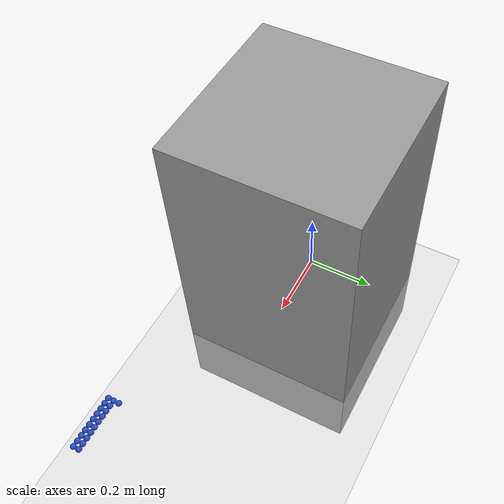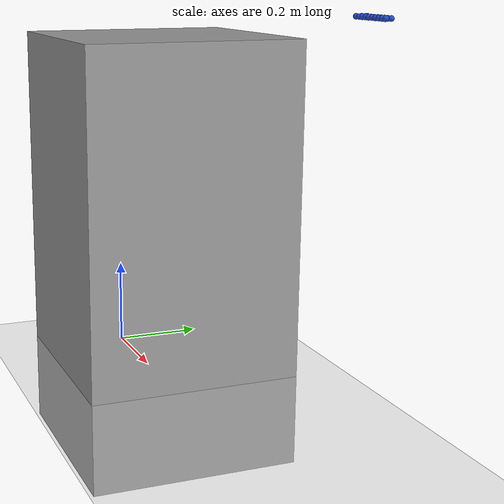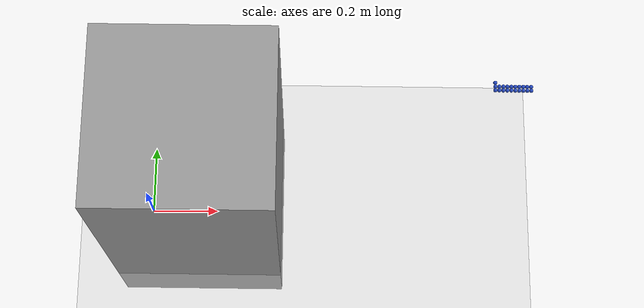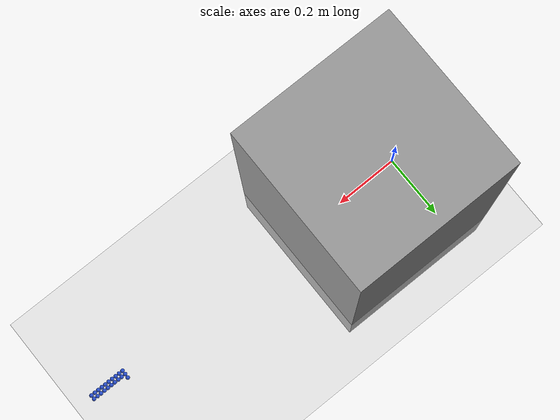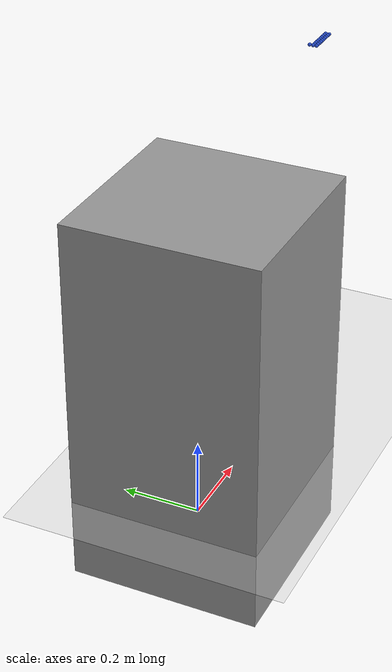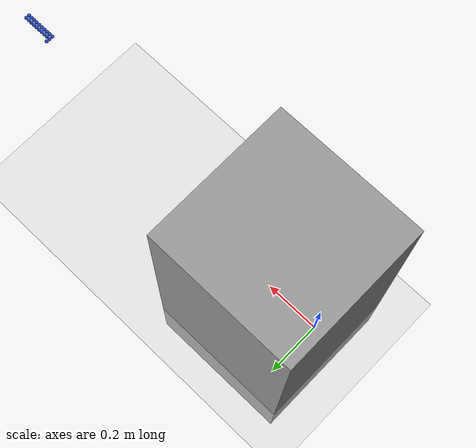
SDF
<sdf version="1.4">
 <world name="default">
  <include><uri>model://ground_plane</uri></include>
  <include><uri>model://sun</uri></include>
  <model name="unit_box_1">
   <pose>0.15 0.05 0.28 0 -0 0</pose>
   <link name="link">
    <inertial>
     <mass>1</mass>
     <inertia><ixx>1</ixx><ixy>0</ixy><ixz>0</ixz><iyy>1</iyy><iyz>0</iyz><izz>1</izz></inertia>
    </inertial>
    <collision name="collision"><geometry><box><size>0.5 0.5 0.55</size></box></geometry></collision>
    <visual name="visual">
     <geometry><box><size>0.5 0.5 1.0</size></box></geometry>
     <material>
      <script><uri>file://media/materials/scripts/gazebo.material</uri><name>Gazebo/Gray</name></script>
     </material>
    </visual>
    <velocity_decay><linear>0</linear><angular>0</angular></velocity_decay>
   </link>
   <static>1</static>
  </model>
  <model name="ball_bearing_0">
   <link name="link">
    <pose>0 0 0.003 0 0 0</pose>
    <inertial>
     <mass>0.0011</mass>
     <inertia>
      <ixx>3.96e-09</ixx>
      <ixy>0</ixy>
      <ixz>0</ixz>
      <iyy>3.96e-09</iyy>
      <iyz>0</iyz>
      <izz>3.96e-09</izz>
     </inertia>
    </inertial>
    <collision name="collision">
     <geometry><sphere><radius>0.005</radius></sphere></geometry>
     <surface><contact><ode><max_vel>0.1</max_vel><min_depth>0.0001</min_depth></ode></contact></surface>
    </collision>
    <visual name="visual">
     <geometry><sphere><radius>0.005</radius></sphere></geometry>
     <material>
      <script><uri>file://media/materials/scripts/gazebo.material</uri><name>Gazebo/Blue</name></script>
     </material>
    </visual>
    <velocity_decay><linear>0</linear><angular>0.005</angular></velocity_decay>
   </link>
   <pose>0.95 0.1 0.85 0.0 0.0 0.0</pose>
  </model>
  <model name="ball_bearing_1">
   <link name="link">
    <pose>0 0 0.003 0 0 0</pose>
    <inertial>
     <mass>0.0011</mass>
     <inertia>
      <ixx>3.96e-09</ixx>
      <ixy>0</ixy>
      <ixz>0</ixz>
      <iyy>3.96e-09</iyy>
      <iyz>0</iyz>
      <izz>3.96e-09</izz>
     </inertia>
    </inertial>
    <collision name="collision">
     <geometry><sphere><radius>0.005</radius></sphere></geometry>
     <surface><contact><ode><max_vel>0.1</max_vel><min_depth>0.0001</min_depth></ode></contact></surface>
    </collision>
    <visual name="visual">
     <geometry><sphere><radius>0.005</radius></sphere></geometry>
     <material>
      <script><uri>file://media/materials/scripts/gazebo.material</uri><name>Gazebo/Blue</name></script>
     </material>
    </visual>
    <velocity_decay><linear>0</linear><angular>0.005</angular></velocity_decay>
   </link>
   <pose>0.96 0.1 0.85 0.0 0.0 0.0</pose>
  </model>
  <model name="ball_bearing_2">
   <link name="link">
    <pose>0 0 0.003 0 0 0</pose>
    <inertial>
     <mass>0.0011</mass>
     <inertia>
      <ixx>3.96e-09</ixx>
      <ixy>0</ixy>
      <ixz>0</ixz>
      <iyy>3.96e-09</iyy>
      <iyz>0</iyz>
      <izz>3.96e-09</izz>
     </inertia>
    </inertial>
    <collision name="collision">
     <geometry><sphere><radius>0.005</radius></sphere></geometry>
     <surface><contact><ode><max_vel>0.1</max_vel><min_depth>0.0001</min_depth></ode></contact></surface>
    </collision>
    <visual name="visual">
     <geometry><sphere><radius>0.005</radius></sphere></geometry>
     <material>
      <script><uri>file://media/materials/scripts/gazebo.material</uri><name>Gazebo/Blue</name></script>
     </material>
    </visual>
    <velocity_decay><linear>0</linear><angular>0.005</angular></velocity_decay>
   </link>
   <pose>0.97 0.1 0.85 0.0 0.0 0.0</pose>
  </model>
  <model name="ball_bearing_3">
   <link name="link">
    <pose>0 0 0.003 0 0 0</pose>
    <inertial>
     <mass>0.0011</mass>
     <inertia>
      <ixx>3.96e-09</ixx>
      <ixy>0</ixy>
      <ixz>0</ixz>
      <iyy>3.96e-09</iyy>
      <iyz>0</iyz>
      <izz>3.96e-09</izz>
     </inertia>
    </inertial>
    <collision name="collision">
     <geometry><sphere><radius>0.005</radius></sphere></geometry>
     <surface><contact><ode><max_vel>0.1</max_vel><min_depth>0.0001</min_depth></ode></contact></surface>
    </collision>
    <visual name="visual">
     <geometry><sphere><radius>0.005</radius></sphere></geometry>
     <material>
      <script><uri>file://media/materials/scripts/gazebo.material</uri><name>Gazebo/Blue</name></script>
     </material>
    </visual>
    <velocity_decay><linear>0</linear><angular>0.005</angular></velocity_decay>
   </link>
   <pose>0.98 0.1 0.85 0.0 0.0 0.0</pose>
  </model>
  <model name="ball_bearing_4">
   <link name="link">
    <pose>0 0 0.003 0 0 0</pose>
    <inertial>
     <mass>0.0011</mass>
     <inertia>
      <ixx>3.96e-09</ixx>
      <ixy>0</ixy>
      <ixz>0</ixz>
      <iyy>3.96e-09</iyy>
      <iyz>0</iyz>
      <izz>3.96e-09</izz>
     </inertia>
    </inertial>
    <collision name="collision">
     <geometry><sphere><radius>0.005</radius></sphere></geometry>
     <surface><contact><ode><max_vel>0.1</max_vel><min_depth>0.0001</min_depth></ode></contact></surface>
    </collision>
    <visual name="visual">
     <geometry><sphere><radius>0.005</radius></sphere></geometry>
     <material>
      <script><uri>file://media/materials/scripts/gazebo.material</uri><name>Gazebo/Blue</name></script>
     </material>
    </visual>
    <velocity_decay><linear>0</linear><angular>0.005</angular></velocity_decay>
   </link>
   <pose>0.99 0.1 0.85 0.0 0.0 0.0</pose>
  </model>
  <model name="ball_bearing_5">
   <link name="link">
    <pose>0 0 0.003 0 0 0</pose>
    <inertial>
     <mass>0.0011</mass>
     <inertia>
      <ixx>3.96e-09</ixx>
      <ixy>0</ixy>
      <ixz>0</ixz>
      <iyy>3.96e-09</iyy>
      <iyz>0</iyz>
      <izz>3.96e-09</izz>
     </inertia>
    </inertial>
    <collision name="collision">
     <geometry><sphere><radius>0.005</radius></sphere></geometry>
     <surface><contact><ode><max_vel>0.1</max_vel><min_depth>0.0001</min_depth></ode></contact></surface>
    </collision>
    <visual name="visual">
     <geometry><sphere><radius>0.005</radius></sphere></geometry>
     <material>
      <script><uri>file://media/materials/scripts/gazebo.material</uri><name>Gazebo/Blue</name></script>
     </material>
    </visual>
    <velocity_decay><linear>0</linear><angular>0.005</angular></velocity_decay>
   </link>
   <pose>1.0 0.1 0.85 0.0 0.0 0.0</pose>
  </model>
  <model name="ball_bearing_6">
   <link name="link">
    <pose>0 0 0.003 0 0 0</pose>
    <inertial>
     <mass>0.0011</mass>
     <inertia>
      <ixx>3.96e-09</ixx>
      <ixy>0</ixy>
      <ixz>0</ixz>
      <iyy>3.96e-09</iyy>
      <iyz>0</iyz>
      <izz>3.96e-09</izz>
     </inertia>
    </inertial>
    <collision name="collision">
     <geometry><sphere><radius>0.005</radius></sphere></geometry>
     <surface><contact><ode><max_vel>0.1</max_vel><min_depth>0.0001</min_depth></ode></contact></surface>
    </collision>
    <visual name="visual">
     <geometry><sphere><radius>0.005</radius></sphere></geometry>
     <material>
      <script><uri>file://media/materials/scripts/gazebo.material</uri><name>Gazebo/Blue</name></script>
     </material>
    </visual>
    <velocity_decay><linear>0</linear><angular>0.005</angular></velocity_decay>
   </link>
   <pose>1.01 0.1 0.85 0.0 0.0 0.0</pose>
  </model>
  <model name="ball_bearing_7">
   <link name="link">
    <pose>0 0 0.003 0 0 0</pose>
    <inertial>
     <mass>0.0011</mass>
     <inertia>
      <ixx>3.96e-09</ixx>
      <ixy>0</ixy>
      <ixz>0</ixz>
      <iyy>3.96e-09</iyy>
      <iyz>0</iyz>
      <izz>3.96e-09</izz>
     </inertia>
    </inertial>
    <collision name="collision">
     <geometry><sphere><radius>0.005</radius></sphere></geometry>
     <surface><contact><ode><max_vel>0.1</max_vel><min_depth>0.0001</min_depth></ode></contact></surface>
    </collision>
    <visual name="visual">
     <geometry><sphere><radius>0.005</radius></sphere></geometry>
     <material>
      <script><uri>file://media/materials/scripts/gazebo.material</uri><name>Gazebo/Blue</name></script>
     </material>
    </visual>
    <velocity_decay><linear>0</linear><angular>0.005</angular></velocity_decay>
   </link>
   <pose>1.02 0.1 0.85 0.0 0.0 0.0</pose>
  </model>
  <model name="ball_bearing_8">
   <link name="link">
    <pose>0 0 0.003 0 0 0</pose>
    <inertial>
     <mass>0.0011</mass>
     <inertia>
      <ixx>3.96e-09</ixx>
      <ixy>0</ixy>
      <ixz>0</ixz>
      <iyy>3.96e-09</iyy>
      <iyz>0</iyz>
      <izz>3.96e-09</izz>
     </inertia>
    </inertial>
    <collision name="collision">
     <geometry><sphere><radius>0.005</radius></sphere></geometry>
     <surface><contact><ode><max_vel>0.1</max_vel><min_depth>0.0001</min_depth></ode></contact></surface>
    </collision>
    <visual name="visual">
     <geometry><sphere><radius>0.005</radius></sphere></geometry>
     <material>
      <script><uri>file://media/materials/scripts/gazebo.material</uri><name>Gazebo/Blue</name></script>
     </material>
    </visual>
    <velocity_decay><linear>0</linear><angular>0.005</angular></velocity_decay>
   </link>
   <pose>1.03 0.1 0.85 0.0 0.0 0.0</pose>
  </model>
  <model name="ball_bearing_9">
   <link name="link">
    <pose>0 0 0.003 0 0 0</pose>
    <inertial>
     <mass>0.0011</mass>
     <inertia>
      <ixx>3.96e-09</ixx>
      <ixy>0</ixy>
      <ixz>0</ixz>
      <iyy>3.96e-09</iyy>
      <iyz>0</iyz>
      <izz>3.96e-09</izz>
     </inertia>
    </inertial>
    <collision name="collision">
     <geometry><sphere><radius>0.005</radius></sphere></geometry>
     <surface><contact><ode><max_vel>0.1</max_vel><min_depth>0.0001</min_depth></ode></contact></surface>
    </collision>
    <visual name="visual">
     <geometry><sphere><radius>0.005</radius></sphere></geometry>
     <material>
      <script><uri>file://media/materials/scripts/gazebo.material</uri><name>Gazebo/Blue</name></script>
     </material>
    </visual>
    <velocity_decay><linear>0</linear><angular>0.005</angular></velocity_decay>
   </link>
   <pose>1.04 0.1 0.85 0.0 0.0 0.0</pose>
  </model>
  <model name="ball_bearing_10">
   <link name="link">
    <pose>0 0 0.003 0 0 0</pose>
    <inertial>
     <mass>0.0011</mass>
     <inertia>
      <ixx>3.96e-09</ixx>
      <ixy>0</ixy>
      <ixz>0</ixz>
      <iyy>3.96e-09</iyy>
      <iyz>0</iyz>
      <izz>3.96e-09</izz>
     </inertia>
    </inertial>
    <collision name="collision">
     <geometry><sphere><radius>0.005</radius></sphere></geometry>
     <surface><contact><ode><max_vel>0.1</max_vel><min_depth>0.0001</min_depth></ode></contact></surface>
    </collision>
    <visual name="visual">
     <geometry><sphere><radius>0.005</radius></sphere></geometry>
     <material>
      <script><uri>file://media/materials/scripts/gazebo.material</uri><name>Gazebo/Blue</name></script>
     </material>
    </visual>
    <velocity_decay><linear>0</linear><angular>0.005</angular></velocity_decay>
   </link>
   <pose>0.95 0.11 0.85 0.0 0.0 0.0</pose>
  </model>
  <model name="ball_bearing_11">
   <link name="link">
    <pose>0 0 0.003 0 0 0</pose>
    <inertial>
     <mass>0.0011</mass>
     <inertia>
      <ixx>3.96e-09</ixx>
      <ixy>0</ixy>
      <ixz>0</ixz>
      <iyy>3.96e-09</iyy>
      <iyz>0</iyz>
      <izz>3.96e-09</izz>
     </inertia>
    </inertial>
    <collision name="collision">
     <geometry><sphere><radius>0.005</radius></sphere></geometry>
     <surface><contact><ode><max_vel>0.1</max_vel><min_depth>0.0001</min_depth></ode></contact></surface>
    </collision>
    <visual name="visual">
     <geometry><sphere><radius>0.005</radius></sphere></geometry>
     <material>
      <script><uri>file://media/materials/scripts/gazebo.material</uri><name>Gazebo/Blue</name></script>
     </material>
    </visual>
    <velocity_decay><linear>0</linear><angular>0.005</angular></velocity_decay>
   </link>
   <pose>0.96 0.11 0.85 0.0 0.0 0.0</pose>
  </model>
  <model name="ball_bearing_12">
   <link name="link">
    <pose>0 0 0.003 0 0 0</pose>
    <inertial>
     <mass>0.0011</mass>
     <inertia>
      <ixx>3.96e-09</ixx>
      <ixy>0</ixy>
      <ixz>0</ixz>
      <iyy>3.96e-09</iyy>
      <iyz>0</iyz>
      <izz>3.96e-09</izz>
     </inertia>
    </inertial>
    <collision name="collision">
     <geometry><sphere><radius>0.005</radius></sphere></geometry>
     <surface><contact><ode><max_vel>0.1</max_vel><min_depth>0.0001</min_depth></ode></contact></surface>
    </collision>
    <visual name="visual">
     <geometry><sphere><radius>0.005</radius></sphere></geometry>
     <material>
      <script><uri>file://media/materials/scripts/gazebo.material</uri><name>Gazebo/Blue</name></script>
     </material>
    </visual>
    <velocity_decay><linear>0</linear><angular>0.005</angular></velocity_decay>
   </link>
   <pose>0.97 0.11 0.85 0.0 0.0 0.0</pose>
  </model>
  <model name="ball_bearing_13">
   <link name="link">
    <pose>0 0 0.003 0 0 0</pose>
    <inertial>
     <mass>0.0011</mass>
     <inertia>
      <ixx>3.96e-09</ixx>
      <ixy>0</ixy>
      <ixz>0</ixz>
      <iyy>3.96e-09</iyy>
      <iyz>0</iyz>
      <izz>3.96e-09</izz>
     </inertia>
    </inertial>
    <collision name="collision">
     <geometry><sphere><radius>0.005</radius></sphere></geometry>
     <surface><contact><ode><max_vel>0.1</max_vel><min_depth>0.0001</min_depth></ode></contact></surface>
    </collision>
    <visual name="visual">
     <geometry><sphere><radius>0.005</radius></sphere></geometry>
     <material>
      <script><uri>file://media/materials/scripts/gazebo.material</uri><name>Gazebo/Blue</name></script>
     </material>
    </visual>
    <velocity_decay><linear>0</linear><angular>0.005</angular></velocity_decay>
   </link>
   <pose>0.98 0.11 0.85 0.0 0.0 0.0</pose>
  </model>
  <model name="ball_bearing_14">
   <link name="link">
    <pose>0 0 0.003 0 0 0</pose>
    <inertial>
     <mass>0.0011</mass>
     <inertia>
      <ixx>3.96e-09</ixx>
      <ixy>0</ixy>
      <ixz>0</ixz>
      <iyy>3.96e-09</iyy>
      <iyz>0</iyz>
      <izz>3.96e-09</izz>
     </inertia>
    </inertial>
    <collision name="collision">
     <geometry><sphere><radius>0.005</radius></sphere></geometry>
     <surface><contact><ode><max_vel>0.1</max_vel><min_depth>0.0001</min_depth></ode></contact></surface>
    </collision>
    <visual name="visual">
     <geometry><sphere><radius>0.005</radius></sphere></geometry>
     <material>
      <script><uri>file://media/materials/scripts/gazebo.material</uri><name>Gazebo/Blue</name></script>
     </material>
    </visual>
    <velocity_decay><linear>0</linear><angular>0.005</angular></velocity_decay>
   </link>
   <pose>0.99 0.11 0.85 0.0 0.0 0.0</pose>
  </model>
  <model name="ball_bearing_15">
   <link name="link">
    <pose>0 0 0.003 0 0 0</pose>
    <inertial>
     <mass>0.0011</mass>
     <inertia>
      <ixx>3.96e-09</ixx>
      <ixy>0</ixy>
      <ixz>0</ixz>
      <iyy>3.96e-09</iyy>
      <iyz>0</iyz>
      <izz>3.96e-09</izz>
     </inertia>
    </inertial>
    <collision name="collision">
     <geometry><sphere><radius>0.005</radius></sphere></geometry>
     <surface><contact><ode><max_vel>0.1</max_vel><min_depth>0.0001</min_depth></ode></contact></surface>
    </collision>
    <visual name="visual">
     <geometry><sphere><radius>0.005</radius></sphere></geometry>
     <material>
      <script><uri>file://media/materials/scripts/gazebo.material</uri><name>Gazebo/Blue</name></script>
     </material>
    </visual>
    <velocity_decay><linear>0</linear><angular>0.005</angular></velocity_decay>
   </link>
   <pose>1.0 0.11 0.85 0.0 0.0 0.0</pose>
  </model>
  <model name="ball_bearing_16">
   <link name="link">
    <pose>0 0 0.003 0 0 0</pose>
    <inertial>
     <mass>0.0011</mass>
     <inertia>
      <ixx>3.96e-09</ixx>
      <ixy>0</ixy>
      <ixz>0</ixz>
      <iyy>3.96e-09</iyy>
      <iyz>0</iyz>
      <izz>3.96e-09</izz>
     </inertia>
    </inertial>
    <collision name="collision">
     <geometry><sphere><radius>0.005</radius></sphere></geometry>
     <surface><contact><ode><max_vel>0.1</max_vel><min_depth>0.0001</min_depth></ode></contact></surface>
    </collision>
    <visual name="visual">
     <geometry><sphere><radius>0.005</radius></sphere></geometry>
     <material>
      <script><uri>file://media/materials/scripts/gazebo.material</uri><name>Gazebo/Blue</name></script>
     </material>
    </visual>
    <velocity_decay><linear>0</linear><angular>0.005</angular></velocity_decay>
   </link>
   <pose>1.01 0.11 0.85 0.0 0.0 0.0</pose>
  </model>
  <model name="ball_bearing_17">
   <link name="link">
    <pose>0 0 0.003 0 0 0</pose>
    <inertial>
     <mass>0.0011</mass>
     <inertia>
      <ixx>3.96e-09</ixx>
      <ixy>0</ixy>
      <ixz>0</ixz>
      <iyy>3.96e-09</iyy>
      <iyz>0</iyz>
      <izz>3.96e-09</izz>
     </inertia>
    </inertial>
    <collision name="collision">
     <geometry><sphere><radius>0.005</radius></sphere></geometry>
     <surface><contact><ode><max_vel>0.1</max_vel><min_depth>0.0001</min_depth></ode></contact></surface>
    </collision>
    <visual name="visual">
     <geometry><sphere><radius>0.005</radius></sphere></geometry>
     <material>
      <script><uri>file://media/materials/scripts/gazebo.material</uri><name>Gazebo/Blue</name></script>
     </material>
    </visual>
    <velocity_decay><linear>0</linear><angular>0.005</angular></velocity_decay>
   </link>
   <pose>1.02 0.11 0.85 0.0 0.0 0.0</pose>
  </model>
  <model name="ball_bearing_18">
   <link name="link">
    <pose>0 0 0.003 0 0 0</pose>
    <inertial>
     <mass>0.0011</mass>
     <inertia>
      <ixx>3.96e-09</ixx>
      <ixy>0</ixy>
      <ixz>0</ixz>
      <iyy>3.96e-09</iyy>
      <iyz>0</iyz>
      <izz>3.96e-09</izz>
     </inertia>
    </inertial>
    <collision name="collision">
     <geometry><sphere><radius>0.005</radius></sphere></geometry>
     <surface><contact><ode><max_vel>0.1</max_vel><min_depth>0.0001</min_depth></ode></contact></surface>
    </collision>
    <visual name="visual">
     <geometry><sphere><radius>0.005</radius></sphere></geometry>
     <material>
      <script><uri>file://media/materials/scripts/gazebo.material</uri><name>Gazebo/Blue</name></script>
     </material>
    </visual>
    <velocity_decay><linear>0</linear><angular>0.005</angular></velocity_decay>
   </link>
   <pose>1.03 0.11 0.85 0.0 0.0 0.0</pose>
  </model>
  <model name="ball_bearing_19">
   <link name="link">
    <pose>0 0 0.003 0 0 0</pose>
    <inertial>
     <mass>0.0011</mass>
     <inertia>
      <ixx>3.96e-09</ixx>
      <ixy>0</ixy>
      <ixz>0</ixz>
      <iyy>3.96e-09</iyy>
      <iyz>0</iyz>
      <izz>3.96e-09</izz>
     </inertia>
    </inertial>
    <collision name="collision">
     <geometry><sphere><radius>0.005</radius></sphere></geometry>
     <surface><contact><ode><max_vel>0.1</max_vel><min_depth>0.0001</min_depth></ode></contact></surface>
    </collision>
    <visual name="visual">
     <geometry><sphere><radius>0.005</radius></sphere></geometry>
     <material>
      <script><uri>file://media/materials/scripts/gazebo.material</uri><name>Gazebo/Blue</name></script>
     </material>
    </visual>
    <velocity_decay><linear>0</linear><angular>0.005</angular></velocity_decay>
   </link>
   <pose>1.04 0.11 0.85 0.0 0.0 0.0</pose>
  </model>
  <model name="ball_bearing_20">
   <link name="link">
    <pose>0 0 0.003 0 0 0</pose>
    <inertial>
     <mass>0.0011</mass>
     <inertia>
      <ixx>3.96e-09</ixx>
      <ixy>0</ixy>
      <ixz>0</ixz>
      <iyy>3.96e-09</iyy>
      <iyz>0</iyz>
      <izz>3.96e-09</izz>
     </inertia>
    </inertial>
    <collision name="collision">
     <geometry><sphere><radius>0.005</radius></sphere></geometry>
     <surface><contact><ode><max_vel>0.1</max_vel><min_depth>0.0001</min_depth></ode></contact></surface>
    </collision>
    <visual name="visual">
     <geometry><sphere><radius>0.005</radius></sphere></geometry>
     <material>
      <script><uri>file://media/materials/scripts/gazebo.material</uri><name>Gazebo/Blue</name></script>
     </material>
    </visual>
    <velocity_decay><linear>0</linear><angular>0.005</angular></velocity_decay>
   </link>
   <pose>0.95 0.12 0.85 0.0 0.0 0.0</pose>
  </model>
 </world>
</sdf>
